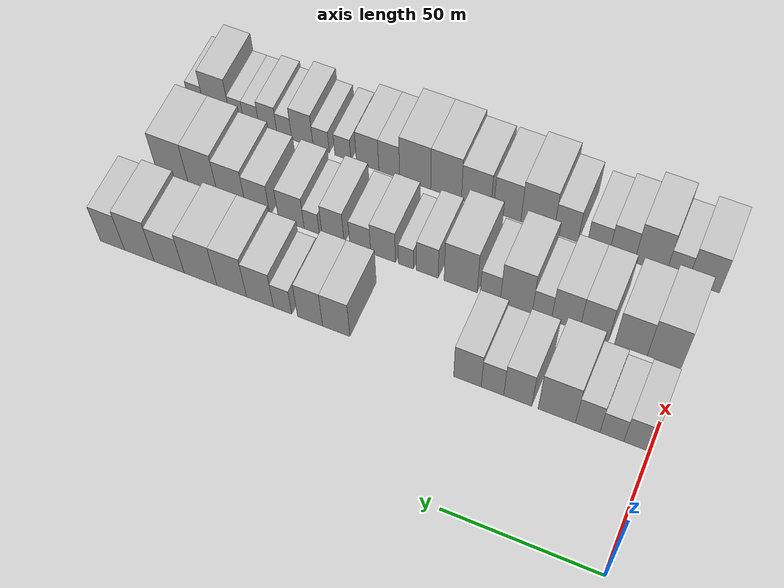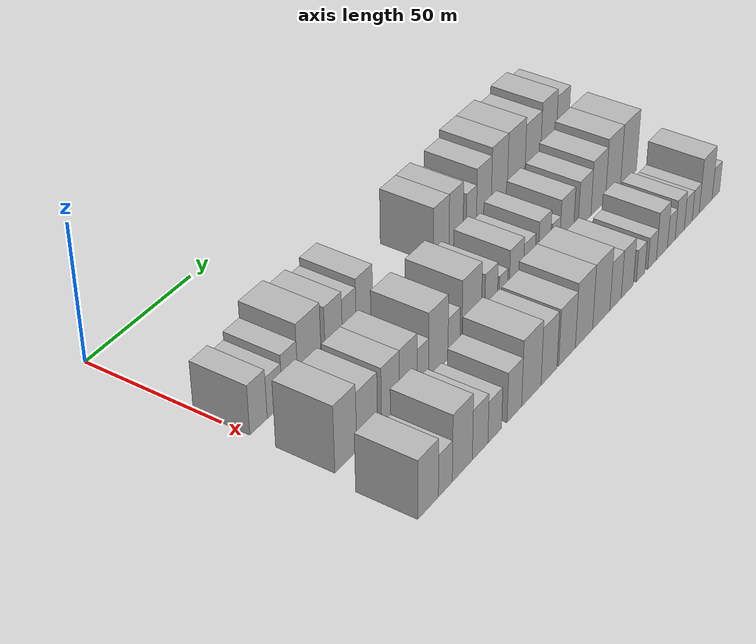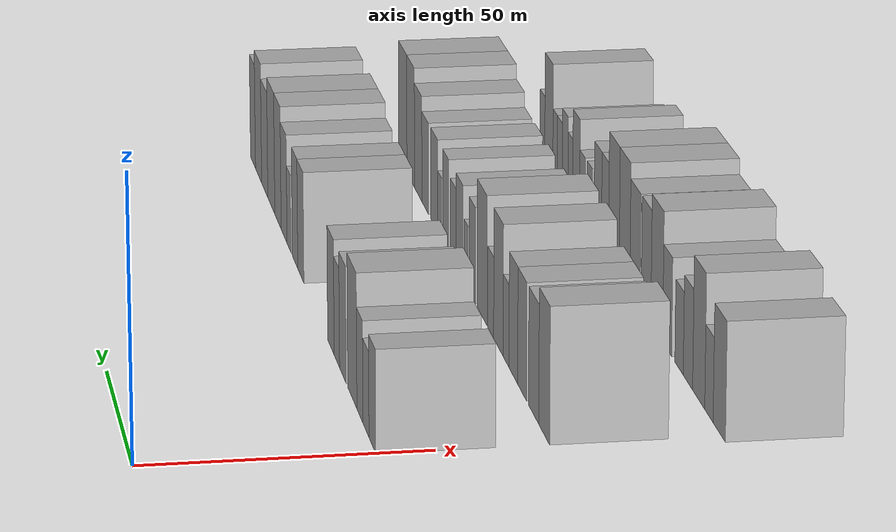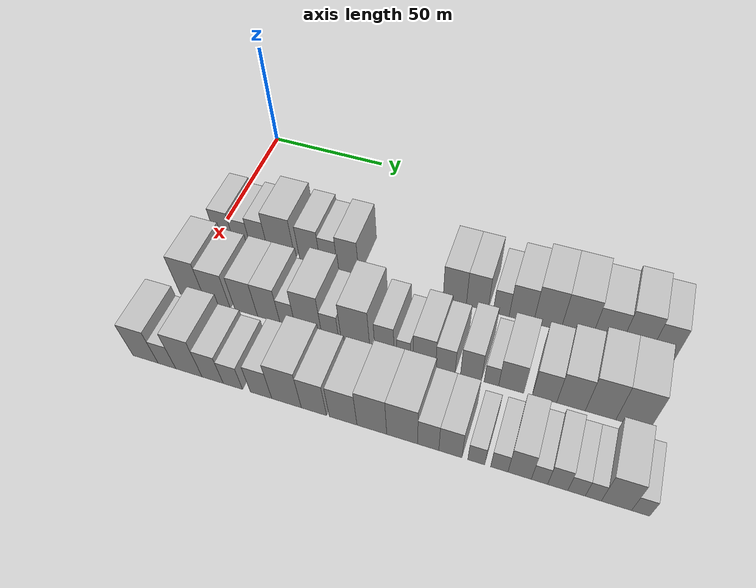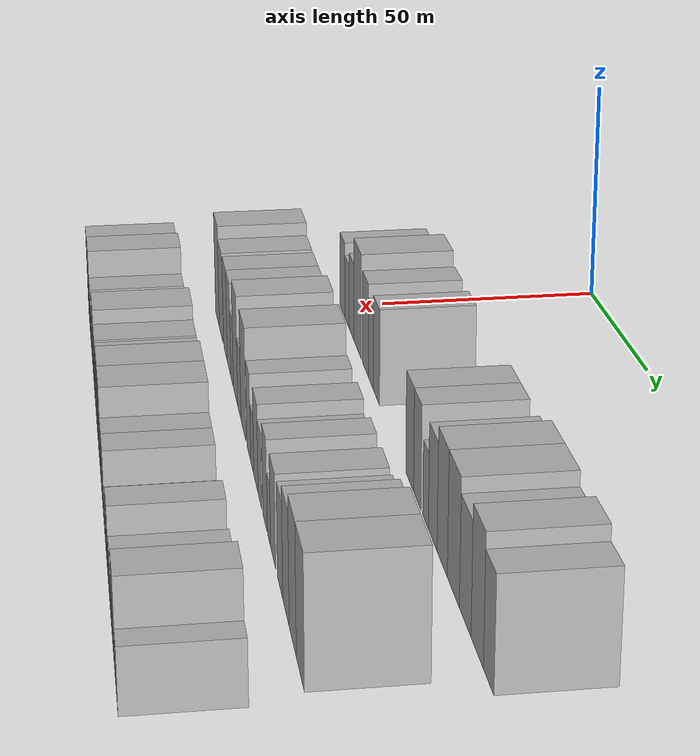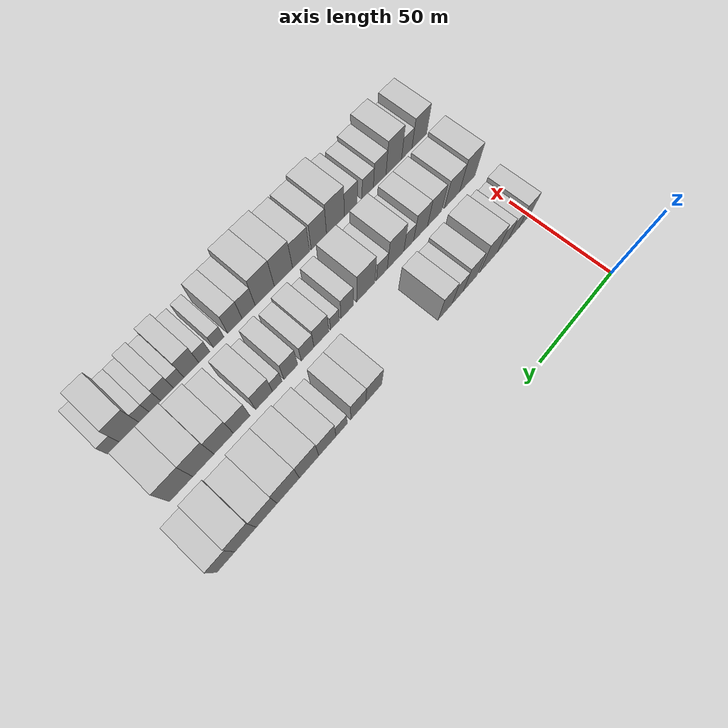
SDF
<sdf version="1.6">
 <world name="default">
  <model name="building_38">
   <static>1</static>
   <pose>50.0000 3.9993 0 0.000000 0.000000 0.000000</pose>
   <link name="link">
    <pose>0 0 9.00 0 0 0</pose>
    <collision name="collision"><geometry><box><size>20.0000 8.2765 18.0000</size></box></geometry></collision>
    <visual name="visual">
     <cast_shadows>0</cast_shadows>
     <geometry><box><size>20.0000 8.2765 18.0000</size></box></geometry>
     <material>
      <script>
       <uri>model://HANNAS_wall/materials/scripts</uri>
       <uri>model://HANNAS_wall/materials/textures</uri>
       <name>vrc/HANNAS_wall</name>
      </script>
     </material>
    </visual>
   </link>
  </model>
  <model name="building_39">
   <static>1</static>
   <pose>50.0000 11.8371 0 0.000000 0.000000 0.000000</pose>
   <link name="link">
    <pose>0 0 7.50 0 0 0</pose>
    <collision name="collision"><geometry><box><size>20.0000 7.3991 15.0000</size></box></geometry></collision>
    <visual name="visual">
     <cast_shadows>0</cast_shadows>
     <geometry><box><size>20.0000 7.3991 15.0000</size></box></geometry>
     <material>
      <script>
       <uri>model://HANNAS_wall/materials/scripts</uri>
       <uri>model://HANNAS_wall/materials/textures</uri>
       <name>vrc/HANNAS_wall</name>
      </script>
     </material>
    </visual>
   </link>
  </model>
  <model name="building_40">
   <static>1</static>
   <pose>50.0000 19.3833 0 0.000000 0.000000 0.000000</pose>
   <link name="link">
    <pose>0 0 9.00 0 0 0</pose>
    <collision name="collision"><geometry><box><size>20.0000 7.6934 18.0000</size></box></geometry></collision>
    <visual name="visual">
     <cast_shadows>0</cast_shadows>
     <geometry><box><size>20.0000 7.6934 18.0000</size></box></geometry>
     <material>
      <script>
       <uri>model://HANNAS_wall/materials/scripts</uri>
       <uri>model://HANNAS_wall/materials/textures</uri>
       <name>vrc/HANNAS_wall</name>
      </script>
     </material>
    </visual>
   </link>
  </model>
  <model name="building_41">
   <static>1</static>
   <pose>50.0000 29.1139 0 0.000000 0.000000 0.000000</pose>
   <link name="link">
    <pose>0 0 12.00 0 0 0</pose>
    <collision name="collision"><geometry><box><size>20.0000 11.7678 24.0000</size></box></geometry></collision>
    <visual name="visual">
     <cast_shadows>0</cast_shadows>
     <geometry><box><size>20.0000 11.7678 24.0000</size></box></geometry>
     <material>
      <script>
       <uri>model://HANNAS_wall/materials/scripts</uri>
       <uri>model://HANNAS_wall/materials/textures</uri>
       <name>vrc/HANNAS_wall</name>
      </script>
     </material>
    </visual>
   </link>
  </model>
  <model name="building_42">
   <static>1</static>
   <pose>50.0000 41.4578 0 0.000000 0.000000 0.000000</pose>
   <link name="link">
    <pose>0 0 10.50 0 0 0</pose>
    <collision name="collision"><geometry><box><size>20.0000 8.9201 21.0000</size></box></geometry></collision>
    <visual name="visual">
     <cast_shadows>0</cast_shadows>
     <geometry><box><size>20.0000 8.9201 21.0000</size></box></geometry>
     <material>
      <script>
       <uri>model://HANNAS_wall/materials/scripts</uri>
       <uri>model://HANNAS_wall/materials/textures</uri>
       <name>vrc/HANNAS_wall</name>
      </script>
     </material>
    </visual>
   </link>
  </model>
  <model name="building_43">
   <static>1</static>
   <pose>50.0000 49.5280 0 0.000000 0.000000 0.000000</pose>
   <link name="link">
    <pose>0 0 9.00 0 0 0</pose>
    <collision name="collision"><geometry><box><size>20.0000 7.2202 18.0000</size></box></geometry></collision>
    <visual name="visual">
     <cast_shadows>0</cast_shadows>
     <geometry><box><size>20.0000 7.2202 18.0000</size></box></geometry>
     <material>
      <script>
       <uri>model://HANNAS_wall/materials/scripts</uri>
       <uri>model://HANNAS_wall/materials/textures</uri>
       <name>vrc/HANNAS_wall</name>
      </script>
     </material>
    </visual>
   </link>
  </model>
  <model name="building_44">
   <static>1</static>
   <pose>50.0000 57.5813 0 0.000000 0.000000 0.000000</pose>
   <link name="link">
    <pose>0 0 10.50 0 0 0</pose>
    <collision name="collision"><geometry><box><size>20.0000 8.8865 21.0000</size></box></geometry></collision>
    <visual name="visual">
     <cast_shadows>0</cast_shadows>
     <geometry><box><size>20.0000 8.8865 21.0000</size></box></geometry>
     <material>
      <script>
       <uri>model://HANNAS_wall/materials/scripts</uri>
       <uri>model://HANNAS_wall/materials/textures</uri>
       <name>vrc/HANNAS_wall</name>
      </script>
     </material>
    </visual>
   </link>
  </model>
  <model name="building_45">
   <static>1</static>
   <pose>50.0000 100.7493 0 0.000000 0.000000 0.000000</pose>
   <link name="link">
    <pose>0 0 10.50 0 0 0</pose>
    <collision name="collision"><geometry><box><size>20.0000 9.1498 21.0000</size></box></geometry></collision>
    <visual name="visual">
     <cast_shadows>0</cast_shadows>
     <geometry><box><size>20.0000 9.1498 21.0000</size></box></geometry>
     <material>
      <script>
       <uri>model://HANNAS_wall/materials/scripts</uri>
       <uri>model://HANNAS_wall/materials/textures</uri>
       <name>vrc/HANNAS_wall</name>
      </script>
     </material>
    </visual>
   </link>
  </model>
  <model name="building_46">
   <static>1</static>
   <pose>50.0000 109.5379 0 0.000000 0.000000 0.000000</pose>
   <link name="link">
    <pose>0 0 10.50 0 0 0</pose>
    <collision name="collision"><geometry><box><size>20.0000 8.4273 21.0000</size></box></geometry></collision>
    <visual name="visual">
     <cast_shadows>0</cast_shadows>
     <geometry><box><size>20.0000 8.4273 21.0000</size></box></geometry>
     <material>
      <script>
       <uri>model://HANNAS_wall/materials/scripts</uri>
       <uri>model://HANNAS_wall/materials/textures</uri>
       <name>vrc/HANNAS_wall</name>
      </script>
     </material>
    </visual>
   </link>
  </model>
  <model name="building_47">
   <static>1</static>
   <pose>50.0000 118.8460 0 0.000000 0.000000 0.000000</pose>
   <link name="link">
    <pose>0 0 7.50 0 0 0</pose>
    <collision name="collision"><geometry><box><size>20.0000 6.1890 15.0000</size></box></geometry></collision>
    <visual name="visual">
     <cast_shadows>0</cast_shadows>
     <geometry><box><size>20.0000 6.1890 15.0000</size></box></geometry>
     <material>
      <script>
       <uri>model://HANNAS_wall/materials/scripts</uri>
       <uri>model://HANNAS_wall/materials/textures</uri>
       <name>vrc/HANNAS_wall</name>
      </script>
     </material>
    </visual>
   </link>
  </model>
  <model name="building_48">
   <static>1</static>
   <pose>50.0000 126.5604 0 0.000000 0.000000 0.000000</pose>
   <link name="link">
    <pose>0 0 10.50 0 0 0</pose>
    <collision name="collision"><geometry><box><size>20.0000 9.2399 21.0000</size></box></geometry></collision>
    <visual name="visual">
     <cast_shadows>0</cast_shadows>
     <geometry><box><size>20.0000 9.2399 21.0000</size></box></geometry>
     <material>
      <script>
       <uri>model://HANNAS_wall/materials/scripts</uri>
       <uri>model://HANNAS_wall/materials/textures</uri>
       <name>vrc/HANNAS_wall</name>
      </script>
     </material>
    </visual>
   </link>
  </model>
  <model name="building_49">
   <static>1</static>
   <pose>50.0000 136.3057 0 0.000000 0.000000 0.000000</pose>
   <link name="link">
    <pose>0 0 12.00 0 0 0</pose>
    <collision name="collision"><geometry><box><size>20.0000 10.2506 24.0000</size></box></geometry></collision>
    <visual name="visual">
     <cast_shadows>0</cast_shadows>
     <geometry><box><size>20.0000 10.2506 24.0000</size></box></geometry>
     <material>
      <script>
       <uri>model://HANNAS_wall/materials/scripts</uri>
       <uri>model://HANNAS_wall/materials/textures</uri>
       <name>vrc/HANNAS_wall</name>
      </script>
     </material>
    </visual>
   </link>
  </model>
  <model name="building_50">
   <static>1</static>
   <pose>50.0000 147.1549 0 0.000000 0.000000 0.000000</pose>
   <link name="link">
    <pose>0 0 12.00 0 0 0</pose>
    <collision name="collision"><geometry><box><size>20.0000 11.4478 24.0000</size></box></geometry></collision>
    <visual name="visual">
     <cast_shadows>0</cast_shadows>
     <geometry><box><size>20.0000 11.4478 24.0000</size></box></geometry>
     <material>
      <script>
       <uri>model://HANNAS_wall/materials/scripts</uri>
       <uri>model://HANNAS_wall/materials/textures</uri>
       <name>vrc/HANNAS_wall</name>
      </script>
     </material>
    </visual>
   </link>
  </model>
  <model name="building_51">
   <static>1</static>
   <pose>50.0000 158.1207 0 0.000000 0.000000 0.000000</pose>
   <link name="link">
    <pose>0 0 10.50 0 0 0</pose>
    <collision name="collision"><geometry><box><size>20.0000 10.4837 21.0000</size></box></geometry></collision>
    <visual name="visual">
     <cast_shadows>0</cast_shadows>
     <geometry><box><size>20.0000 10.4837 21.0000</size></box></geometry>
     <material>
      <script>
       <uri>model://HANNAS_wall/materials/scripts</uri>
       <uri>model://HANNAS_wall/materials/textures</uri>
       <name>vrc/HANNAS_wall</name>
      </script>
     </material>
    </visual>
   </link>
  </model>
  <model name="building_52">
   <static>1</static>
   <pose>50.0000 168.6137 0 0.000000 0.000000 0.000000</pose>
   <link name="link">
    <pose>0 0 12.00 0 0 0</pose>
    <collision name="collision"><geometry><box><size>20.0000 10.5022 24.0000</size></box></geometry></collision>
    <visual name="visual">
     <cast_shadows>0</cast_shadows>
     <geometry><box><size>20.0000 10.5022 24.0000</size></box></geometry>
     <material>
      <script>
       <uri>model://HANNAS_wall/materials/scripts</uri>
       <uri>model://HANNAS_wall/materials/textures</uri>
       <name>vrc/HANNAS_wall</name>
      </script>
     </material>
    </visual>
   </link>
  </model>
  <model name="building_53">
   <static>1</static>
   <pose>50.0000 178.1863 0 0.000000 0.000000 0.000000</pose>
   <link name="link">
    <pose>0 0 10.50 0 0 0</pose>
    <collision name="collision"><geometry><box><size>20.0000 8.6431 21.0000</size></box></geometry></collision>
    <visual name="visual">
     <cast_shadows>0</cast_shadows>
     <geometry><box><size>20.0000 8.6431 21.0000</size></box></geometry>
     <material>
      <script>
       <uri>model://HANNAS_wall/materials/scripts</uri>
       <uri>model://HANNAS_wall/materials/textures</uri>
       <name>vrc/HANNAS_wall</name>
      </script>
     </material>
    </visual>
   </link>
  </model>
  <model name="building_112">
   <static>1</static>
   <pose>79.0000 5.1742 0 0.000000 0.000000 0.000000</pose>
   <link name="link">
    <pose>0 0 12.00 0 0 0</pose>
    <collision name="collision"><geometry><box><size>20.0000 10.7598 24.0000</size></box></geometry></collision>
    <visual name="visual">
     <cast_shadows>0</cast_shadows>
     <geometry><box><size>20.0000 10.7598 24.0000</size></box></geometry>
     <material>
      <script>
       <uri>model://HANNAS_wall/materials/scripts</uri>
       <uri>model://HANNAS_wall/materials/textures</uri>
       <name>vrc/HANNAS_wall</name>
      </script>
     </material>
    </visual>
   </link>
  </model>
  <model name="building_113">
   <static>1</static>
   <pose>79.0000 15.7699 0 0.000000 0.000000 0.000000</pose>
   <link name="link">
    <pose>0 0 10.50 0 0 0</pose>
    <collision name="collision"><geometry><box><size>20.0000 10.4316 21.0000</size></box></geometry></collision>
    <visual name="visual">
     <cast_shadows>0</cast_shadows>
     <geometry><box><size>20.0000 10.4316 21.0000</size></box></geometry>
     <material>
      <script>
       <uri>model://HANNAS_wall/materials/scripts</uri>
       <uri>model://HANNAS_wall/materials/textures</uri>
       <name>vrc/HANNAS_wall</name>
      </script>
     </material>
    </visual>
   </link>
  </model>
  <model name="building_114">
   <static>1</static>
   <pose>79.0000 27.6469 0 0.000000 0.000000 0.000000</pose>
   <link name="link">
    <pose>0 0 10.50 0 0 0</pose>
    <collision name="collision"><geometry><box><size>20.0000 9.3224 21.0000</size></box></geometry></collision>
    <visual name="visual">
     <cast_shadows>0</cast_shadows>
     <geometry><box><size>20.0000 9.3224 21.0000</size></box></geometry>
     <material>
      <script>
       <uri>model://HANNAS_wall/materials/scripts</uri>
       <uri>model://HANNAS_wall/materials/textures</uri>
       <name>vrc/HANNAS_wall</name>
      </script>
     </material>
    </visual>
   </link>
  </model>
  <model name="building_115">
   <static>1</static>
   <pose>79.0000 36.8908 0 0.000000 0.000000 0.000000</pose>
   <link name="link">
    <pose>0 0 10.50 0 0 0</pose>
    <collision name="collision"><geometry><box><size>20.0000 9.1654 21.0000</size></box></geometry></collision>
    <visual name="visual">
     <cast_shadows>0</cast_shadows>
     <geometry><box><size>20.0000 9.1654 21.0000</size></box></geometry>
     <material>
      <script>
       <uri>model://HANNAS_wall/materials/scripts</uri>
       <uri>model://HANNAS_wall/materials/textures</uri>
       <name>vrc/HANNAS_wall</name>
      </script>
     </material>
    </visual>
   </link>
  </model>
  <model name="building_116">
   <static>1</static>
   <pose>79.0000 44.6226 0 0.000000 0.000000 0.000000</pose>
   <link name="link">
    <pose>0 0 7.50 0 0 0</pose>
    <collision name="collision"><geometry><box><size>20.0000 6.2981 15.0000</size></box></geometry></collision>
    <visual name="visual">
     <cast_shadows>0</cast_shadows>
     <geometry><box><size>20.0000 6.2981 15.0000</size></box></geometry>
     <material>
      <script>
       <uri>model://HANNAS_wall/materials/scripts</uri>
       <uri>model://HANNAS_wall/materials/textures</uri>
       <name>vrc/HANNAS_wall</name>
      </script>
     </material>
    </visual>
   </link>
  </model>
  <model name="building_117">
   <static>1</static>
   <pose>79.0000 53.0283 0 0.000000 0.000000 0.000000</pose>
   <link name="link">
    <pose>0 0 12.00 0 0 0</pose>
    <collision name="collision"><geometry><box><size>20.0000 10.5134 24.0000</size></box></geometry></collision>
    <visual name="visual">
     <cast_shadows>0</cast_shadows>
     <geometry><box><size>20.0000 10.5134 24.0000</size></box></geometry>
     <material>
      <script>
       <uri>model://HANNAS_wall/materials/scripts</uri>
       <uri>model://HANNAS_wall/materials/textures</uri>
       <name>vrc/HANNAS_wall</name>
      </script>
     </material>
    </visual>
   </link>
  </model>
  <model name="building_118">
   <static>1</static>
   <pose>79.0000 61.6324 0 0.000000 0.000000 0.000000</pose>
   <link name="link">
    <pose>0 0 7.50 0 0 0</pose>
    <collision name="collision"><geometry><box><size>20.0000 6.6950 15.0000</size></box></geometry></collision>
    <visual name="visual">
     <cast_shadows>0</cast_shadows>
     <geometry><box><size>20.0000 6.6950 15.0000</size></box></geometry>
     <material>
      <script>
       <uri>model://HANNAS_wall/materials/scripts</uri>
       <uri>model://HANNAS_wall/materials/textures</uri>
       <name>vrc/HANNAS_wall</name>
      </script>
     </material>
    </visual>
   </link>
  </model>
  <model name="building_119">
   <static>1</static>
   <pose>79.0000 71.5129 0 0.000000 0.000000 0.000000</pose>
   <link name="link">
    <pose>0 0 12.00 0 0 0</pose>
    <collision name="collision"><geometry><box><size>20.0000 11.0660 24.0000</size></box></geometry></collision>
    <visual name="visual">
     <cast_shadows>0</cast_shadows>
     <geometry><box><size>20.0000 11.0660 24.0000</size></box></geometry>
     <material>
      <script>
       <uri>model://HANNAS_wall/materials/scripts</uri>
       <uri>model://HANNAS_wall/materials/textures</uri>
       <name>vrc/HANNAS_wall</name>
      </script>
     </material>
    </visual>
   </link>
  </model>
  <model name="building_120">
   <static>1</static>
   <pose>79.0000 82.7144 0 0.000000 0.000000 0.000000</pose>
   <link name="link">
    <pose>0 0 9.00 0 0 0</pose>
    <collision name="collision"><geometry><box><size>20.0000 7.3370 18.0000</size></box></geometry></collision>
    <visual name="visual">
     <cast_shadows>0</cast_shadows>
     <geometry><box><size>20.0000 7.3370 18.0000</size></box></geometry>
     <material>
      <script>
       <uri>model://HANNAS_wall/materials/scripts</uri>
       <uri>model://HANNAS_wall/materials/textures</uri>
       <name>vrc/HANNAS_wall</name>
      </script>
     </material>
    </visual>
   </link>
  </model>
  <model name="building_121">
   <static>1</static>
   <pose>79.0000 89.9380 0 0.000000 0.000000 0.000000</pose>
   <link name="link">
    <pose>0 0 6.00 0 0 0</pose>
    <collision name="collision"><geometry><box><size>20.0000 5.1101 12.0000</size></box></geometry></collision>
    <visual name="visual">
     <cast_shadows>0</cast_shadows>
     <geometry><box><size>20.0000 5.1101 12.0000</size></box></geometry>
     <material>
      <script>
       <uri>model://HANNAS_wall/materials/scripts</uri>
       <uri>model://HANNAS_wall/materials/textures</uri>
       <name>vrc/HANNAS_wall</name>
      </script>
     </material>
    </visual>
   </link>
  </model>
  <model name="building_122">
   <static>1</static>
   <pose>79.0000 97.7464 0 0.000000 0.000000 0.000000</pose>
   <link name="link">
    <pose>0 0 9.00 0 0 0</pose>
    <collision name="collision"><geometry><box><size>20.0000 8.5068 18.0000</size></box></geometry></collision>
    <visual name="visual">
     <cast_shadows>0</cast_shadows>
     <geometry><box><size>20.0000 8.5068 18.0000</size></box></geometry>
     <material>
      <script>
       <uri>model://HANNAS_wall/materials/scripts</uri>
       <uri>model://HANNAS_wall/materials/textures</uri>
       <name>vrc/HANNAS_wall</name>
      </script>
     </material>
    </visual>
   </link>
  </model>
  <model name="building_123">
   <static>1</static>
   <pose>79.0000 105.5858 0 0.000000 0.000000 0.000000</pose>
   <link name="link">
    <pose>0 0 7.50 0 0 0</pose>
    <collision name="collision"><geometry><box><size>20.0000 7.1720 15.0000</size></box></geometry></collision>
    <visual name="visual">
     <cast_shadows>0</cast_shadows>
     <geometry><box><size>20.0000 7.1720 15.0000</size></box></geometry>
     <material>
      <script>
       <uri>model://HANNAS_wall/materials/scripts</uri>
       <uri>model://HANNAS_wall/materials/textures</uri>
       <name>vrc/HANNAS_wall</name>
      </script>
     </material>
    </visual>
   </link>
  </model>
  <model name="building_124">
   <static>1</static>
   <pose>79.0000 114.9839 0 0.000000 0.000000 0.000000</pose>
   <link name="link">
    <pose>0 0 9.00 0 0 0</pose>
    <collision name="collision"><geometry><box><size>20.0000 7.6242 18.0000</size></box></geometry></collision>
    <visual name="visual">
     <cast_shadows>0</cast_shadows>
     <geometry><box><size>20.0000 7.6242 18.0000</size></box></geometry>
     <material>
      <script>
       <uri>model://HANNAS_wall/materials/scripts</uri>
       <uri>model://HANNAS_wall/materials/textures</uri>
       <name>vrc/HANNAS_wall</name>
      </script>
     </material>
    </visual>
   </link>
  </model>
  <model name="building_125">
   <static>1</static>
   <pose>79.0000 122.4185 0 0.000000 0.000000 0.000000</pose>
   <link name="link">
    <pose>0 0 6.00 0 0 0</pose>
    <collision name="collision"><geometry><box><size>20.0000 5.2451 12.0000</size></box></geometry></collision>
    <visual name="visual">
     <cast_shadows>0</cast_shadows>
     <geometry><box><size>20.0000 5.2451 12.0000</size></box></geometry>
     <material>
      <script>
       <uri>model://HANNAS_wall/materials/scripts</uri>
       <uri>model://HANNAS_wall/materials/textures</uri>
       <name>vrc/HANNAS_wall</name>
      </script>
     </material>
    </visual>
   </link>
  </model>
  <model name="building_126">
   <static>1</static>
   <pose>79.0000 129.5362 0 0.000000 0.000000 0.000000</pose>
   <link name="link">
    <pose>0 0 9.00 0 0 0</pose>
    <collision name="collision"><geometry><box><size>20.0000 8.9902 18.0000</size></box></geometry></collision>
    <visual name="visual">
     <cast_shadows>0</cast_shadows>
     <geometry><box><size>20.0000 8.9902 18.0000</size></box></geometry>
     <material>
      <script>
       <uri>model://HANNAS_wall/materials/scripts</uri>
       <uri>model://HANNAS_wall/materials/textures</uri>
       <name>vrc/HANNAS_wall</name>
      </script>
     </material>
    </visual>
   </link>
  </model>
  <model name="building_127">
   <static>1</static>
   <pose>79.0000 141.3337 0 0.000000 0.000000 0.000000</pose>
   <link name="link">
    <pose>0 0 9.00 0 0 0</pose>
    <collision name="collision"><geometry><box><size>20.0000 8.6048 18.0000</size></box></geometry></collision>
    <visual name="visual">
     <cast_shadows>0</cast_shadows>
     <geometry><box><size>20.0000 8.6048 18.0000</size></box></geometry>
     <material>
      <script>
       <uri>model://HANNAS_wall/materials/scripts</uri>
       <uri>model://HANNAS_wall/materials/textures</uri>
       <name>vrc/HANNAS_wall</name>
      </script>
     </material>
    </visual>
   </link>
  </model>
  <model name="building_128">
   <static>1</static>
   <pose>79.0000 150.5864 0 0.000000 0.000000 0.000000</pose>
   <link name="link">
    <pose>0 0 10.50 0 0 0</pose>
    <collision name="collision"><geometry><box><size>20.0000 9.9007 21.0000</size></box></geometry></collision>
    <visual name="visual">
     <cast_shadows>0</cast_shadows>
     <geometry><box><size>20.0000 9.9007 21.0000</size></box></geometry>
     <material>
      <script>
       <uri>model://HANNAS_wall/materials/scripts</uri>
       <uri>model://HANNAS_wall/materials/textures</uri>
       <name>vrc/HANNAS_wall</name>
      </script>
     </material>
    </visual>
   </link>
  </model>
  <model name="building_129">
   <static>1</static>
   <pose>79.0000 160.7810 0 0.000000 0.000000 0.000000</pose>
   <link name="link">
    <pose>0 0 12.00 0 0 0</pose>
    <collision name="collision"><geometry><box><size>20.0000 10.4884 24.0000</size></box></geometry></collision>
    <visual name="visual">
     <cast_shadows>0</cast_shadows>
     <geometry><box><size>20.0000 10.4884 24.0000</size></box></geometry>
     <material>
      <script>
       <uri>model://HANNAS_wall/materials/scripts</uri>
       <uri>model://HANNAS_wall/materials/textures</uri>
       <name>vrc/HANNAS_wall</name>
      </script>
     </material>
    </visual>
   </link>
  </model>
  <model name="building_130">
   <static>1</static>
   <pose>79.0000 171.6976 0 0.000000 0.000000 0.000000</pose>
   <link name="link">
    <pose>0 0 12.00 0 0 0</pose>
    <collision name="collision"><geometry><box><size>20.0000 11.3449 24.0000</size></box></geometry></collision>
    <visual name="visual">
     <cast_shadows>0</cast_shadows>
     <geometry><box><size>20.0000 11.3449 24.0000</size></box></geometry>
     <material>
      <script>
       <uri>model://HANNAS_wall/materials/scripts</uri>
       <uri>model://HANNAS_wall/materials/textures</uri>
       <name>vrc/HANNAS_wall</name>
      </script>
     </material>
    </visual>
   </link>
  </model>
  <model name="building_185">
   <static>1</static>
   <pose>108.0000 1.8367 0 0.000000 0.000000 0.000000</pose>
   <link name="link">
    <pose>0 0 10.50 0 0 0</pose>
    <collision name="collision"><geometry><box><size>20.0000 10.2334 21.0000</size></box></geometry></collision>
    <visual name="visual">
     <cast_shadows>0</cast_shadows>
     <geometry><box><size>20.0000 10.2334 21.0000</size></box></geometry>
     <material>
      <script>
       <uri>model://HANNAS_wall/materials/scripts</uri>
       <uri>model://HANNAS_wall/materials/textures</uri>
       <name>vrc/HANNAS_wall</name>
      </script>
     </material>
    </visual>
   </link>
  </model>
  <model name="building_186">
   <static>1</static>
   <pose>108.0000 10.5058 0 0.000000 0.000000 0.000000</pose>
   <link name="link">
    <pose>0 0 7.50 0 0 0</pose>
    <collision name="collision"><geometry><box><size>20.0000 7.1048 15.0000</size></box></geometry></collision>
    <visual name="visual">
     <cast_shadows>0</cast_shadows>
     <geometry><box><size>20.0000 7.1048 15.0000</size></box></geometry>
     <material>
      <script>
       <uri>model://HANNAS_wall/materials/scripts</uri>
       <uri>model://HANNAS_wall/materials/textures</uri>
       <name>vrc/HANNAS_wall</name>
      </script>
     </material>
    </visual>
   </link>
  </model>
  <model name="building_187">
   <static>1</static>
   <pose>108.0000 19.2928 0 0.000000 0.000000 0.000000</pose>
   <link name="link">
    <pose>0 0 12.00 0 0 0</pose>
    <collision name="collision"><geometry><box><size>20.0000 10.4692 24.0000</size></box></geometry></collision>
    <visual name="visual">
     <cast_shadows>0</cast_shadows>
     <geometry><box><size>20.0000 10.4692 24.0000</size></box></geometry>
     <material>
      <script>
       <uri>model://HANNAS_wall/materials/scripts</uri>
       <uri>model://HANNAS_wall/materials/textures</uri>
       <name>vrc/HANNAS_wall</name>
      </script>
     </material>
    </visual>
   </link>
  </model>
  <model name="building_188">
   <static>1</static>
   <pose>108.0000 28.6797 0 0.000000 0.000000 0.000000</pose>
   <link name="link">
    <pose>0 0 9.00 0 0 0</pose>
    <collision name="collision"><geometry><box><size>20.0000 8.3047 18.0000</size></box></geometry></collision>
    <visual name="visual">
     <cast_shadows>0</cast_shadows>
     <geometry><box><size>20.0000 8.3047 18.0000</size></box></geometry>
     <material>
      <script>
       <uri>model://HANNAS_wall/materials/scripts</uri>
       <uri>model://HANNAS_wall/materials/textures</uri>
       <name>vrc/HANNAS_wall</name>
      </script>
     </material>
    </visual>
   </link>
  </model>
  <model name="building_189">
   <static>1</static>
   <pose>108.0000 36.5666 0 0.000000 0.000000 0.000000</pose>
   <link name="link">
    <pose>0 0 7.50 0 0 0</pose>
    <collision name="collision"><geometry><box><size>20.0000 7.4690 15.0000</size></box></geometry></collision>
    <visual name="visual">
     <cast_shadows>0</cast_shadows>
     <geometry><box><size>20.0000 7.4690 15.0000</size></box></geometry>
     <material>
      <script>
       <uri>model://HANNAS_wall/materials/scripts</uri>
       <uri>model://HANNAS_wall/materials/textures</uri>
       <name>vrc/HANNAS_wall</name>
      </script>
     </material>
    </visual>
   </link>
  </model>
  <model name="building_190">
   <static>1</static>
   <pose>108.0000 47.3777 0 0.000000 0.000000 0.000000</pose>
   <link name="link">
    <pose>0 0 9.00 0 0 0</pose>
    <collision name="collision"><geometry><box><size>20.0000 8.1531 18.0000</size></box></geometry></collision>
    <visual name="visual">
     <cast_shadows>0</cast_shadows>
     <geometry><box><size>20.0000 8.1531 18.0000</size></box></geometry>
     <material>
      <script>
       <uri>model://HANNAS_wall/materials/scripts</uri>
       <uri>model://HANNAS_wall/materials/textures</uri>
       <name>vrc/HANNAS_wall</name>
      </script>
     </material>
    </visual>
   </link>
  </model>
  <model name="building_191">
   <static>1</static>
   <pose>108.0000 57.0106 0 0.000000 0.000000 0.000000</pose>
   <link name="link">
    <pose>0 0 12.00 0 0 0</pose>
    <collision name="collision"><geometry><box><size>20.0000 11.1126 24.0000</size></box></geometry></collision>
    <visual name="visual">
     <cast_shadows>0</cast_shadows>
     <geometry><box><size>20.0000 11.1126 24.0000</size></box></geometry>
     <material>
      <script>
       <uri>model://HANNAS_wall/materials/scripts</uri>
       <uri>model://HANNAS_wall/materials/textures</uri>
       <name>vrc/HANNAS_wall</name>
      </script>
     </material>
    </visual>
   </link>
  </model>
  <model name="building_192">
   <static>1</static>
   <pose>108.0000 67.2360 0 0.000000 0.000000 0.000000</pose>
   <link name="link">
    <pose>0 0 10.50 0 0 0</pose>
    <collision name="collision"><geometry><box><size>20.0000 9.3382 21.0000</size></box></geometry></collision>
    <visual name="visual">
     <cast_shadows>0</cast_shadows>
     <geometry><box><size>20.0000 9.3382 21.0000</size></box></geometry>
     <material>
      <script>
       <uri>model://HANNAS_wall/materials/scripts</uri>
       <uri>model://HANNAS_wall/materials/textures</uri>
       <name>vrc/HANNAS_wall</name>
      </script>
     </material>
    </visual>
   </link>
  </model>
  <model name="building_193">
   <static>1</static>
   <pose>108.0000 77.9367 0 0.000000 0.000000 0.000000</pose>
   <link name="link">
    <pose>0 0 10.50 0 0 0</pose>
    <collision name="collision"><geometry><box><size>20.0000 10.0633 21.0000</size></box></geometry></collision>
    <visual name="visual">
     <cast_shadows>0</cast_shadows>
     <geometry><box><size>20.0000 10.0633 21.0000</size></box></geometry>
     <material>
      <script>
       <uri>model://HANNAS_wall/materials/scripts</uri>
       <uri>model://HANNAS_wall/materials/textures</uri>
       <name>vrc/HANNAS_wall</name>
      </script>
     </material>
    </visual>
   </link>
  </model>
  <model name="building_194">
   <static>1</static>
   <pose>108.0000 88.2943 0 0.000000 0.000000 0.000000</pose>
   <link name="link">
    <pose>0 0 12.00 0 0 0</pose>
    <collision name="collision"><geometry><box><size>20.0000 10.6520 24.0000</size></box></geometry></collision>
    <visual name="visual">
     <cast_shadows>0</cast_shadows>
     <geometry><box><size>20.0000 10.6520 24.0000</size></box></geometry>
     <material>
      <script>
       <uri>model://HANNAS_wall/materials/scripts</uri>
       <uri>model://HANNAS_wall/materials/textures</uri>
       <name>vrc/HANNAS_wall</name>
      </script>
     </material>
    </visual>
   </link>
  </model>
  <model name="building_195">
   <static>1</static>
   <pose>108.0000 99.0736 0 0.000000 0.000000 0.000000</pose>
   <link name="link">
    <pose>0 0 12.00 0 0 0</pose>
    <collision name="collision"><geometry><box><size>20.0000 10.9066 24.0000</size></box></geometry></collision>
    <visual name="visual">
     <cast_shadows>0</cast_shadows>
     <geometry><box><size>20.0000 10.9066 24.0000</size></box></geometry>
     <material>
      <script>
       <uri>model://HANNAS_wall/materials/scripts</uri>
       <uri>model://HANNAS_wall/materials/textures</uri>
       <name>vrc/HANNAS_wall</name>
      </script>
     </material>
    </visual>
   </link>
  </model>
  <model name="building_196">
   <static>1</static>
   <pose>108.0000 108.1982 0 0.000000 0.000000 0.000000</pose>
   <link name="link">
    <pose>0 0 9.00 0 0 0</pose>
    <collision name="collision"><geometry><box><size>20.0000 7.3424 18.0000</size></box></geometry></collision>
    <visual name="visual">
     <cast_shadows>0</cast_shadows>
     <geometry><box><size>20.0000 7.3424 18.0000</size></box></geometry>
     <material>
      <script>
       <uri>model://HANNAS_wall/materials/scripts</uri>
       <uri>model://HANNAS_wall/materials/textures</uri>
       <name>vrc/HANNAS_wall</name>
      </script>
     </material>
    </visual>
   </link>
  </model>
  <model name="building_197">
   <static>1</static>
   <pose>108.0000 115.8320 0 0.000000 0.000000 0.000000</pose>
   <link name="link">
    <pose>0 0 9.00 0 0 0</pose>
    <collision name="collision"><geometry><box><size>20.0000 7.9253 18.0000</size></box></geometry></collision>
    <visual name="visual">
     <cast_shadows>0</cast_shadows>
     <geometry><box><size>20.0000 7.9253 18.0000</size></box></geometry>
     <material>
      <script>
       <uri>model://HANNAS_wall/materials/scripts</uri>
       <uri>model://HANNAS_wall/materials/textures</uri>
       <name>vrc/HANNAS_wall</name>
      </script>
     </material>
    </visual>
   </link>
  </model>
  <model name="building_198">
   <static>1</static>
   <pose>108.0000 124.6548 0 0.000000 0.000000 0.000000</pose>
   <link name="link">
    <pose>0 0 6.00 0 0 0</pose>
    <collision name="collision"><geometry><box><size>20.0000 5.7202 12.0000</size></box></geometry></collision>
    <visual name="visual">
     <cast_shadows>0</cast_shadows>
     <geometry><box><size>20.0000 5.7202 12.0000</size></box></geometry>
     <material>
      <script>
       <uri>model://HANNAS_wall/materials/scripts</uri>
       <uri>model://HANNAS_wall/materials/textures</uri>
       <name>vrc/HANNAS_wall</name>
      </script>
     </material>
    </visual>
   </link>
  </model>
  <model name="building_199">
   <static>1</static>
   <pose>108.0000 132.4103 0 0.000000 0.000000 0.000000</pose>
   <link name="link">
    <pose>0 0 6.00 0 0 0</pose>
    <collision name="collision"><geometry><box><size>20.0000 5.7907 12.0000</size></box></geometry></collision>
    <visual name="visual">
     <cast_shadows>0</cast_shadows>
     <geometry><box><size>20.0000 5.7907 12.0000</size></box></geometry>
     <material>
      <script>
       <uri>model://HANNAS_wall/materials/scripts</uri>
       <uri>model://HANNAS_wall/materials/textures</uri>
       <name>vrc/HANNAS_wall</name>
      </script>
     </material>
    </visual>
   </link>
  </model>
  <model name="building_200">
   <static>1</static>
   <pose>108.0000 139.1654 0 0.000000 0.000000 0.000000</pose>
   <link name="link">
    <pose>0 0 9.00 0 0 0</pose>
    <collision name="collision"><geometry><box><size>20.0000 7.7195 18.0000</size></box></geometry></collision>
    <visual name="visual">
     <cast_shadows>0</cast_shadows>
     <geometry><box><size>20.0000 7.7195 18.0000</size></box></geometry>
     <material>
      <script>
       <uri>model://HANNAS_wall/materials/scripts</uri>
       <uri>model://HANNAS_wall/materials/textures</uri>
       <name>vrc/HANNAS_wall</name>
      </script>
     </material>
    </visual>
   </link>
  </model>
  <model name="building_201">
   <static>1</static>
   <pose>108.0000 145.6961 0 0.000000 0.000000 0.000000</pose>
   <link name="link">
    <pose>0 0 6.00 0 0 0</pose>
    <collision name="collision"><geometry><box><size>20.0000 5.3417 12.0000</size></box></geometry></collision>
    <visual name="visual">
     <cast_shadows>0</cast_shadows>
     <geometry><box><size>20.0000 5.3417 12.0000</size></box></geometry>
     <material>
      <script>
       <uri>model://HANNAS_wall/materials/scripts</uri>
       <uri>model://HANNAS_wall/materials/textures</uri>
       <name>vrc/HANNAS_wall</name>
      </script>
     </material>
    </visual>
   </link>
  </model>
  <model name="building_202">
   <static>1</static>
   <pose>108.0000 151.6180 0 0.000000 0.000000 0.000000</pose>
   <link name="link">
    <pose>0 0 7.50 0 0 0</pose>
    <collision name="collision"><geometry><box><size>20.0000 6.5021 15.0000</size></box></geometry></collision>
    <visual name="visual">
     <cast_shadows>0</cast_shadows>
     <geometry><box><size>20.0000 6.5021 15.0000</size></box></geometry>
     <material>
      <script>
       <uri>model://HANNAS_wall/materials/scripts</uri>
       <uri>model://HANNAS_wall/materials/textures</uri>
       <name>vrc/HANNAS_wall</name>
      </script>
     </material>
    </visual>
   </link>
  </model>
  <model name="building_203">
   <static>1</static>
   <pose>108.0000 157.6956 0 0.000000 0.000000 0.000000</pose>
   <link name="link">
    <pose>0 0 6.00 0 0 0</pose>
    <collision name="collision"><geometry><box><size>20.0000 5.6531 12.0000</size></box></geometry></collision>
    <visual name="visual">
     <cast_shadows>0</cast_shadows>
     <geometry><box><size>20.0000 5.6531 12.0000</size></box></geometry>
     <material>
      <script>
       <uri>model://HANNAS_wall/materials/scripts</uri>
       <uri>model://HANNAS_wall/materials/textures</uri>
       <name>vrc/HANNAS_wall</name>
      </script>
     </material>
    </visual>
   </link>
  </model>
  <model name="building_204">
   <static>1</static>
   <pose>108.0000 163.0754 0 0.000000 0.000000 0.000000</pose>
   <link name="link">
    <pose>0 0 6.00 0 0 0</pose>
    <collision name="collision"><geometry><box><size>20.0000 5.1066 12.0000</size></box></geometry></collision>
    <visual name="visual">
     <cast_shadows>0</cast_shadows>
     <geometry><box><size>20.0000 5.1066 12.0000</size></box></geometry>
     <material>
      <script>
       <uri>model://HANNAS_wall/materials/scripts</uri>
       <uri>model://HANNAS_wall/materials/textures</uri>
       <name>vrc/HANNAS_wall</name>
      </script>
     </material>
    </visual>
   </link>
  </model>
  <model name="building_205">
   <static>1</static>
   <pose>108.0000 170.3951 0 0.000000 0.000000 0.000000</pose>
   <link name="link">
    <pose>0 0 10.50 0 0 0</pose>
    <collision name="collision"><geometry><box><size>20.0000 9.5327 21.0000</size></box></geometry></collision>
    <visual name="visual">
     <cast_shadows>0</cast_shadows>
     <geometry><box><size>20.0000 9.5327 21.0000</size></box></geometry>
     <material>
      <script>
       <uri>model://HANNAS_wall/materials/scripts</uri>
       <uri>model://HANNAS_wall/materials/textures</uri>
       <name>vrc/HANNAS_wall</name>
      </script>
     </material>
    </visual>
   </link>
  </model>
  <model name="building_206">
   <static>1</static>
   <pose>108.0000 177.9770 0 0.000000 0.000000 0.000000</pose>
   <link name="link">
    <pose>0 0 6.00 0 0 0</pose>
    <collision name="collision"><geometry><box><size>20.0000 5.6312 12.0000</size></box></geometry></collision>
    <visual name="visual">
     <cast_shadows>0</cast_shadows>
     <geometry><box><size>20.0000 5.6312 12.0000</size></box></geometry>
     <material>
      <script>
       <uri>model://HANNAS_wall/materials/scripts</uri>
       <uri>model://HANNAS_wall/materials/textures</uri>
       <name>vrc/HANNAS_wall</name>
      </script>
     </material>
    </visual>
   </link>
  </model>
 </world>
</sdf>
